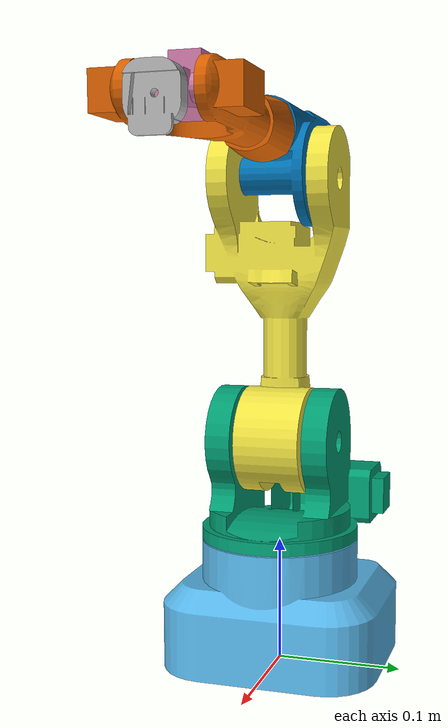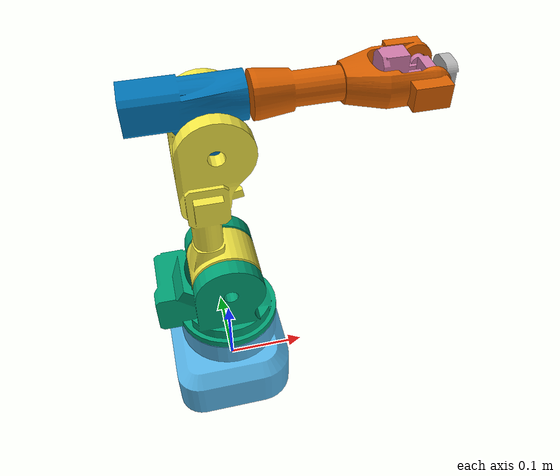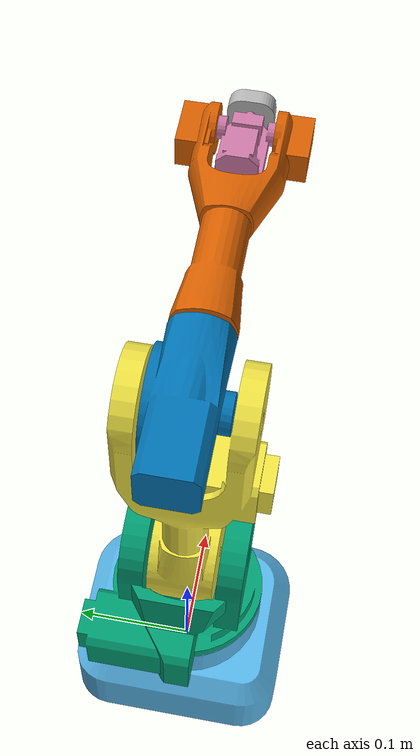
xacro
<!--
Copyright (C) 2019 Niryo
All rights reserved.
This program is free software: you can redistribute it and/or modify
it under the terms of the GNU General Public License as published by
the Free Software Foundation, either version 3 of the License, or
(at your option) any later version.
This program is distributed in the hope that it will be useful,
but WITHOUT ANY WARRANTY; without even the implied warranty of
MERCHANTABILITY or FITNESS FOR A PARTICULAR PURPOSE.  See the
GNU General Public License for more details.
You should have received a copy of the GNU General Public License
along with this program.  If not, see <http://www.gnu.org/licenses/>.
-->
<?xml version="1.0"?>

<robot xmlns:xacro="http://www.ros.org/wiki/xacro" name="niryo_one">

    <!-- Properties -->

    <xacro:property name="distance_origin_shoulder_z" value="0.103" />
    <xacro:property name="distance_shoulder_arm_z" value="0.080" />
    <xacro:property name="distance_arm_elbow_x" value="0.210" />
    <xacro:property name="distance_arm_elbow_y" value="0.0" />
    <xacro:property name="distance_elbow_forearm_x" value="0.0415" />
    <xacro:property name="distance_elbow_forearm_y" value="0.030" />
    <xacro:property name="distance_forearm_wrist_z" value="0.180" />
    <xacro:property name="distance_wrist_hand_x" value="0.0164" />
    <xacro:property name="distance_wrist_hand_y" value="-0.0055" />
    <xacro:property name="distance_hand_tool" value="0.0073" />

    <xacro:property name="PI" value="3.14159265359" />

    <xacro:property name="limit_low_shoulder_rotation" value="-3.05433" />
    <xacro:property name="limit_up_shoulder_rotation" value="3.05433" />
    <xacro:property name="limit_low_arm_rotation" value="-1.91986" />
    <xacro:property name="limit_up_arm_rotation" value="0.640187" />
    <xacro:property name="limit_low_elbow_rotation" value="-1.397485" />
    <xacro:property name="limit_up_elbow_rotation" value="${PI/2}" />
    <xacro:property name="limit_low_forearm_rotation" value="-3.05433" />
    <xacro:property name="limit_up_forearm_rotation" value="3.05433" />
    <xacro:property name="limit_low_wrist_rotation" value="-1.74533" />
    <xacro:property name="limit_up_wrist_rotation" value="1.91986" />
    <xacro:property name="limit_low_hand_rotation" value="-2.57436" />
    <xacro:property name="limit_up_hand_rotation" value="2.57436" />

    <!-- Links -->

    <link name="world" />

    <link name="base_link">
        <visual>
            <origin xyz="0 0 0" rpy="0 0 0" />
            <geometry>
                <mesh filename="package://niryo_one_description/meshes/v2/collada/base_link.dae" />
            </geometry>
        </visual>
        <collision>
            <origin xyz="0 0 0" rpy="0 0 0" />
            <geometry>
                <mesh filename="package://niryo_one_description/meshes/v2/stl/base_link.stl" />
            </geometry>
        </collision>
        <inertial>
            <origin xyz="0 0 ${distance_origin_shoulder_z / 2}" rpy="0 0 0" />
            <mass value="1.2" />
            <inertia ixx="0.0015" ixy="0.0" ixz="0.0" iyy="0.0015" iyz="0.0" izz="0.0015"/>
        </inertial>
    </link>

    <link name="shoulder_link">
        <visual>
            <origin xyz="0 0 0" rpy="0 0 0" />
            <geometry>
                <mesh filename="package://niryo_one_description/meshes/v2/collada/shoulder_link.dae" />
            </geometry>
        </visual>
        <collision>
            <origin xyz="0 0 0" rpy="0 0 0" />
            <geometry>
                <mesh filename="package://niryo_one_description/meshes/v2/stl/shoulder_link.stl" />
            </geometry>
        </collision>
        <inertial>
            <origin xyz="0 0 ${distance_shoulder_arm_z / 2}" rpy="0 0 0" />
            <mass value="0.8" />
            <inertia ixx="0.0015" ixy="0.0" ixz="0.0" iyy="0.0015" iyz="0.0" izz="0.0015"/>
        </inertial>
    </link>

    <link name="arm_link">
        <visual>
            <origin xyz="0 0 0" rpy="0 0 0" />
            <geometry>
                <mesh filename="package://niryo_one_description/meshes/v2/collada/arm_link.dae" />
            </geometry>
        </visual>
        <collision>
            <origin xyz="0 0 0" rpy="0 0 0" />
            <geometry>
                <mesh filename="package://niryo_one_description/meshes/v2/stl/arm_link.stl" />
            </geometry>
        </collision>
        <inertial>
            <origin xyz="${distance_arm_elbow_x / 2} -0.1 0" rpy="0 0 0" />
            <mass value="0.4" />
            <inertia ixx="0.0015" ixy="0.0" ixz="0.0" iyy="0.0015" iyz="0.0" izz="0.0015"/>
        </inertial>
    </link>

    <link name="elbow_link">
        <visual>
            <origin xyz="0 0 0" rpy="0 0 0" />
            <geometry>
                <mesh filename="package://niryo_one_description/meshes/v2/collada/elbow_link.dae" />
            </geometry>
        </visual>
        <collision>
            <origin xyz="0 0 0" rpy="0 0 0" />
            <geometry>
                <mesh filename="package://niryo_one_description/meshes/v2/stl/elbow_link.stl" />
            </geometry>
        </collision>
        <inertial>
            <origin xyz="${distance_elbow_forearm_x / 2} ${distance_elbow_forearm_y / 2} 0" rpy="0 0 0" />
            <mass value="0.3" />
            <inertia ixx="0.0015" ixy="0.0" ixz="0.0" iyy="0.0015" iyz="0.0" izz="0.0015"/>
        </inertial>
    </link>

    <link name="forearm_link">
        <visual>
            <origin xyz="0 0 0" rpy="0 0 0" />
            <geometry>
                <mesh filename="package://niryo_one_description/meshes/v2/collada/forearm_link.dae" />
            </geometry>
        </visual>
        <collision>
            <origin xyz="0 0 0" rpy="0 0 0" />
            <geometry>
                <mesh filename="package://niryo_one_description/meshes/v2/stl/forearm_link.stl" />
            </geometry>
        </collision>
        <inertial>
            <origin xyz="0 0 ${distance_forearm_wrist_z / 2}" rpy="0 0 0" />
            <mass value="0.3" />
            <inertia ixx="0.0015" ixy="0.0" ixz="0.0" iyy="0.0015" iyz="0.0" izz="0.0015"/>
        </inertial>
    </link>

    <link name="wrist_link">
        <visual>
            <origin xyz="0 0 0" rpy="0 0 0" />
            <geometry>
                <mesh filename="package://niryo_one_description/meshes/v2/collada/wrist_link.dae" />
            </geometry>
        </visual>
        <collision>
            <origin xyz="0 0 0" rpy="0 0 0" />
            <geometry>
                <mesh filename="package://niryo_one_description/meshes/v2/stl/wrist_link.stl" />
            </geometry>
        </collision>
        <inertial>
            <origin xyz="${distance_wrist_hand_x / 2} ${distance_wrist_hand_y / 2} 0" rpy="0 0 0" />
            <mass value="0.15" />
            <inertia ixx="0.001" ixy="0.0" ixz="0.0" iyy="0.001" iyz="0.0" izz="0.001"/>
        </inertial>
    </link>

    <link name="hand_link">
        <visual>
            <origin xyz="0 0 0" rpy="0 0 0" />
            <geometry>
                <mesh filename="package://niryo_one_description/meshes/v2/collada/hand_link.dae" />
            </geometry>
        </visual>
        <collision>
            <origin xyz="0 0 0" rpy="0 0 0" />
            <geometry>
                <mesh filename="package://niryo_one_description/meshes/v2/stl/hand_link.stl" />
            </geometry>
        </collision>
        <inertial>
            <origin xyz="0 0 ${distance_hand_tool / 2}" rpy="0 0 0" />
            <mass value="0.05" />
            <inertia ixx="0.001" ixy="0.0" ixz="0.0" iyy="0.001" iyz="0.0" izz="0.001"/>
        </inertial>
    </link>

    <link name="tool_link">
    </link>

    <!--Joints -->

    <joint name="joint_world" type="fixed">
        <parent link="world"/>
        <child link="base_link"/>
        <origin xyz="0 0 0" rpy="0 0 0" />
    </joint>

    <joint name="joint_1" type="revolute">
        <parent link="base_link" />
        <child link="shoulder_link" />
        <origin xyz="0 0 ${distance_origin_shoulder_z}" rpy="0 0 0" />
        <axis xyz="0 0 1" />
        <limit effort="100.0" velocity="3.0" lower="${limit_low_shoulder_rotation}" upper="${limit_up_shoulder_rotation}" />
        <dynamics damping="0.1" friction="0.0" />
    </joint>

    <joint name="joint_2" type="revolute">
        <parent link="shoulder_link" />
        <child link="arm_link" />
        <origin xyz="0 0 ${distance_shoulder_arm_z}" rpy="${PI/2} ${-PI/2} 0" />
        <limit effort="100.0" velocity="3.0" lower="${limit_low_arm_rotation}" upper="${limit_up_arm_rotation}" />
        <axis xyz="0 0 1" />
        <dynamics damping="0.1" friction="0.0" />
    </joint>

    <joint name="joint_3" type="revolute">
        <parent link="arm_link" />
        <child link="elbow_link" />
        <origin xyz="${distance_arm_elbow_x} ${distance_arm_elbow_y} 0" rpy="0 0 ${-PI/2}" />
        <limit effort="100.0" velocity="3.0" lower="${limit_low_elbow_rotation}" upper="${limit_up_elbow_rotation}" />
        <axis xyz="0 0 1" />
        <dynamics damping="0.1" friction="0.0" />
    </joint>

    <joint name="joint_4" type="revolute">
        <parent link="elbow_link" />
        <child link="forearm_link" />
        <origin xyz="${distance_elbow_forearm_x} ${distance_elbow_forearm_y} 0" rpy="0 ${PI/2} 0" />
        <limit effort="100.0" velocity="3.0" lower="${limit_low_forearm_rotation}" upper="${limit_up_forearm_rotation}" />
        <axis xyz="0 0 1" />
        <dynamics damping="0.1" friction="0.0" />
    </joint>

    <joint name="joint_5" type="revolute">
        <parent link="forearm_link" />
        <child link="wrist_link" />
        <origin xyz="0 0 ${distance_forearm_wrist_z}" rpy="0 ${-PI/2} 0" />
        <limit effort="100.0" velocity="3.0" lower="${limit_low_wrist_rotation}" upper="${limit_up_wrist_rotation}" />
        <axis xyz="0 0 1" />
        <dynamics damping="0.1" friction="0.0" />
    </joint>

    <joint name="joint_6" type="revolute">
        <parent link="wrist_link" />
        <child link="hand_link" />
        <origin xyz="${distance_wrist_hand_x} ${distance_wrist_hand_y} 0" rpy="0 ${PI/2} 0" />
        <limit effort="100.0" velocity="3.0" lower="${limit_low_hand_rotation}" upper="${limit_up_hand_rotation}" />
        <axis xyz="0 0 1" />
        <dynamics damping="0.1" friction="0.0" />
    </joint>

    <joint name="hand_tool_joint" type="fixed">
        <parent link="hand_link" />
        <child link="tool_link" />
        <origin xyz="0 0 ${distance_hand_tool}" rpy="${-PI/2} ${-PI/2} 0" />
    </joint>

    <transmission name="transmission_1">
        <type>transmission_interface/SimpleTransmission</type>
        <joint name="joint_1">
            <hardwareInterface>hardware_interface/EffortJointInterface</hardwareInterface>
        </joint>
        <actuator name="motor_1">
            <hardwareInterface>hardware_interface/EffortJointInterface</hardwareInterface>
            <mechanicalReduction>1</mechanicalReduction>
        </actuator>
    </transmission>

    <transmission name="transmission_2">
        <type>transmission_interface/SimpleTransmission</type>
        <joint name="joint_2">
            <hardwareInterface>hardware_interface/EffortJointInterface</hardwareInterface>
        </joint>
        <actuator name="motor_2">
            <hardwareInterface>hardware_interface/EffortJointInterface</hardwareInterface>
            <mechanicalReduction>1</mechanicalReduction>
        </actuator>
    </transmission>

    <transmission name="transmission_3">
        <type>transmission_interface/SimpleTransmission</type>
        <joint name="joint_3">
            <hardwareInterface>hardware_interface/EffortJointInterface</hardwareInterface>
        </joint>
        <actuator name="motor_3">
            <hardwareInterface>hardware_interface/EffortJointInterface</hardwareInterface>
            <mechanicalReduction>1</mechanicalReduction>
        </actuator>
    </transmission>

    <transmission name="transmission_4">
        <type>transmission_interface/SimpleTransmission</type>
        <joint name="joint_4">
            <hardwareInterface>hardware_interface/EffortJointInterface</hardwareInterface>
        </joint>
        <actuator name="motor_4">
            <hardwareInterface>hardware_interface/EffortJointInterface</hardwareInterface>
            <mechanicalReduction>1</mechanicalReduction>
        </actuator>
    </transmission>

    <transmission name="transmission_5">
        <type>transmission_interface/SimpleTransmission</type>
        <joint name="joint_5">
            <hardwareInterface>hardware_interface/EffortJointInterface</hardwareInterface>
        </joint>
        <actuator name="motor_5">
            <hardwareInterface>hardware_interface/EffortJointInterface</hardwareInterface>
            <mechanicalReduction>1</mechanicalReduction>
        </actuator>
    </transmission>

    <transmission name="transmission_6">
        <type>transmission_interface/SimpleTransmission</type>
        <joint name="joint_6">
            <hardwareInterface>hardware_interface/EffortJointInterface</hardwareInterface>
        </joint>
        <actuator name="motor_6">
            <hardwareInterface>hardware_interface/EffortJointInterface</hardwareInterface>
            <mechanicalReduction>1</mechanicalReduction>
        </actuator>
    </transmission>

    <gazebo>
        <plugin name="gazebo_ros_control" filename="libgazebo_ros_control.so">
        </plugin>
    </gazebo>

    <gazebo reference="base_link">
        <selfCollide>true</selfCollide>
    </gazebo>

    <gazebo reference="shoulder_link">
        <selfCollide>true</selfCollide>
    </gazebo>

    <gazebo reference="arm_link">
        <selfCollide>true</selfCollide>
    </gazebo>

    <gazebo reference="elbow_link">
        <selfCollide>true</selfCollide>
    </gazebo>

    <gazebo reference="forearm_link">
        <selfCollide>true</selfCollide>
    </gazebo>

    <gazebo reference="wrist_link">
        <selfCollide>true</selfCollide>
    </gazebo>

    <gazebo reference="hand_link">
        <selfCollide>true</selfCollide>
    </gazebo>

    <gazebo reference="tool_link">
    </gazebo>

</robot>
